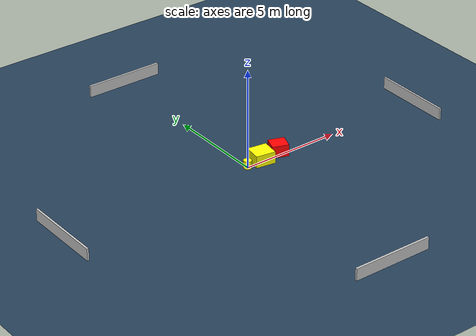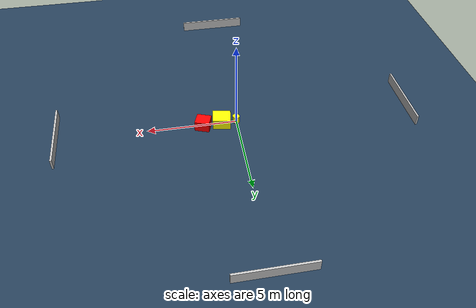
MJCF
<?xml version="1.0" ?>
<mujoco model="generated_environment">
  <option timestep="0.01" integrator="RK4" cone="elliptic"/>
  <default>
    <geom density="1"/>
  </default>
  <asset>
    <texture builtin="gradient" height="3072" name="skybox" rgb1="0.3 0.5 0.7" rgb2="0 0 0" type="skybox" width="512"/>
    <texture builtin="checker" height="300" name="groundplane" rgb1="0.2 0.3 0.4" rgb2="0.1 0.2 0.3" type="2d" width="300"/>
    <material name="groundplane" reflectance="0.2" texrepeat="5 5" texture="groundplane"/>
  </asset>
  <worldbody>
    <light dir="0 0 -1" directional="true" pos="0 0 1.5"/>
    <geom condim="3" friction="0.5 0.005 0.001" material="groundplane" name="floor" pos="0 0 0" size="0 0 0.05" type="plane"/>
    <body name="walls">
      <geom name="wall_1" condim="4" pos="-10.0 0.0 0.3" rgba="0.800000011920929 0.800000011920929 0.800000011920929 1.0" size="0.05 2.0 0.3" type="box"/>
      <geom name="wall_2" condim="4" pos="10.0 0.0 0.3" rgba="0.800000011920929 0.800000011920929 0.800000011920929 1.0" size="0.05 2.0 0.3" type="box"/>
      <geom name="wall_3" condim="4" pos="0.0 -10.0 0.3" rgba="0.800000011920929 0.800000011920929 0.800000011920929 1.0" size="2.0 0.05 0.3" type="box"/>
      <geom name="wall_4" condim="4" pos="0.0 10.0 0.3" rgba="0.800000011920929 0.800000011920929 0.800000011920929 1.0" size="2.0 0.05 0.3" type="box"/>
    </body>
    <body name="robot">
      <joint name="joint_x" type="slide" pos="0 0 0" axis="1 0 0"/>
      <joint name="joint_y" type="slide" pos="0 0 0" axis="0 1 0"/>
      <geom name="robot" type="cylinder" pos="0.0 0.0 0.2" size="0.2 0.2 0.0" mass="5.0" friction="1.0 0.005 0.0001" condim="4" rgba="1.0 1.0 0.0 1.0"/>
    </body>
    <body name="obstacle_1_movable">
      <geom name="obstacle_1_movable" condim="4" pos="0.8396590958826605 0.07337054890119643 0.3" euler="0 0 171.61615467554836" friction="0.0 0.005 0.001" rgba="1.0 1.0 0.0 1.0" size="0.49585051243053563 0.44482240496874026 0.3" type="box" mass="0.1"/>
      <joint type="free"/>
    </body>
    <body name="obstacle_2_static">
      <geom name="obstacle_2_static" condim="4" pos="1.900256366453524 0.16215098505870562 0.3" euler="0 0 70.22099425755093" friction="0.0 0.005 0.001" rgba="1.0 0.0 0.0 1.0" size="0.3653163032565798 0.4080795450231324 0.3" type="box"/>
    </body>
  </worldbody>
  <actuator>
    <motor name="actuator_x" joint="joint_x" gear="1" ctrlrange="-1 1"/>
    <motor name="actuator_y" joint="joint_y" gear="1" ctrlrange="-1 1"/>
  </actuator>
</mujoco>
